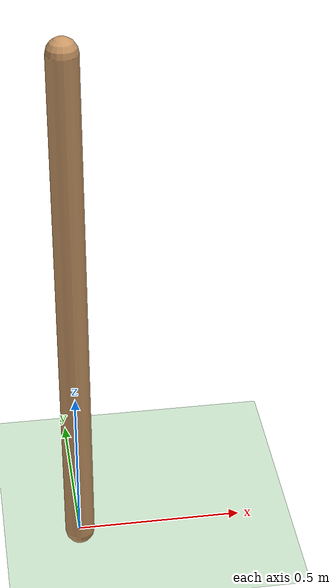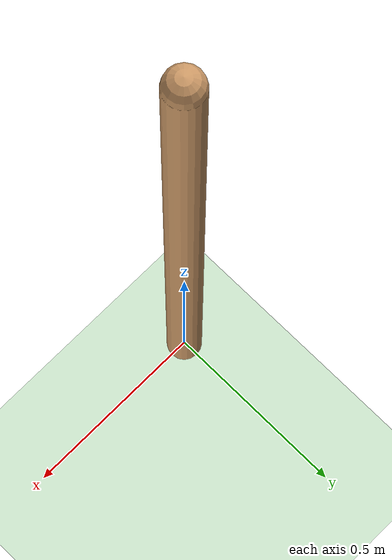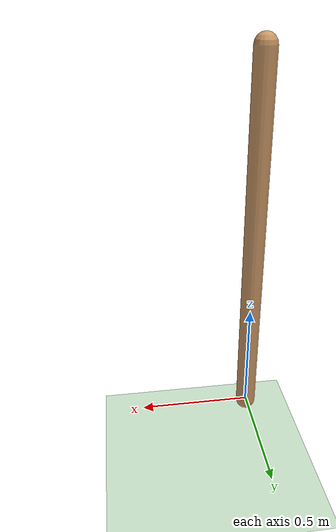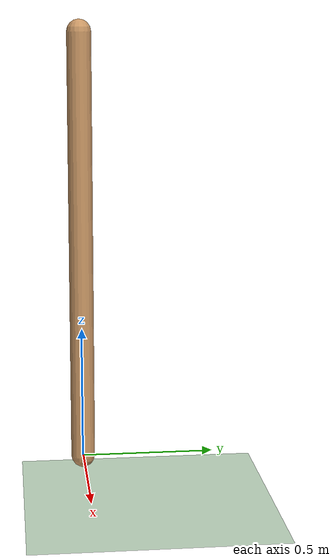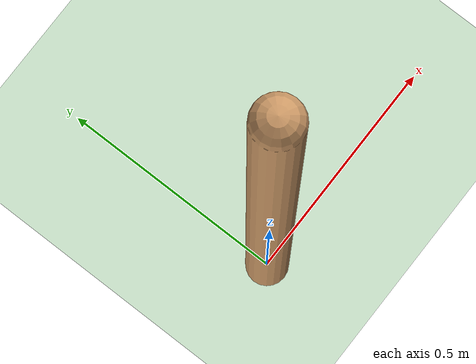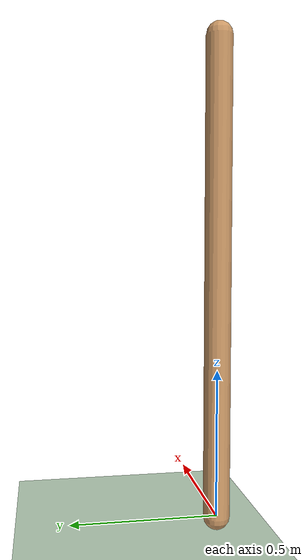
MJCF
<mujoco model="IP_custom">
	<compiler angle="radian" coordinate="local" inertiafromgeom="false" />
	<default>
		<joint damping="0.0" />
		<geom contype="0" friction="0.0 0.0 0.0" rgba="0.7 0.7 0 1" />
	</default>
	<option gravity="0 0 -9.81" integrator="RK4" timestep="0.008333333" />
	<size nstack="3000" nuser_actuator="10" nuserdata="100" />
  	<asset>
		<texture builtin="gradient" height="100" rgb1=".4 .5 .6" rgb2="0 0 0" type="skybox" width="100" />
		<texture builtin="flat" height="1278" mark="cross" markrgb="1 1 1" name="texgeom" random="0.01" rgb1="0.8 0.6 0.4" rgb2="0.8 0.6 0.4" type="cube" width="127" />
		<texture builtin="checker" height="100" name="texplane" rgb1="0 0 0" rgb2="0.8 0.8 0.8" type="2d" width="100" />
		<material name="MatPlane" reflectance="0.5" shininess="1" specular="1" texrepeat="60 60" texture="texplane" />
		<material name="geom" texture="texgeom" texuniform="true" />
	</asset>
	<worldbody>
		<light cutoff="100" diffuse="1 1 1" dir="-0 0 -1.3" directional="true" exponent="1" pos="0 0 1.3" specular=".1 .1 .1" />
    	<geom condim="3" friction="1 .1 .1" material="MatPlane" name="floor" pos="0 0 -0.1" rgba="0.8 0.9 0.8 1" size="20 20 0.125" type="plane" />
		<body name="pole" pos="0 0 0">

			<joint axis="0 -1 0" limited="true" name="hinge" pos="0 0 0" range="-0.5 0.5" type="hinge" />
			<geom fromto="0 0 0 0 0 1.6150" name="cpole" rgba="0.8 0.6 0.4 1.0" size="0.045" type="capsule" />
			<inertial diaginertia="8.781883 8.781883 0.001" mass="77.7782" pos="0 0 0.9178" />
		</body>
	</worldbody>
	<actuator>
		<motor ctrllimited="true" ctrlrange="-1.0 1.0" gear="100" joint="hinge" />
	</actuator>
</mujoco>
